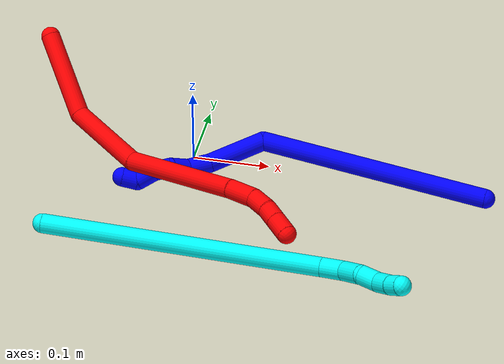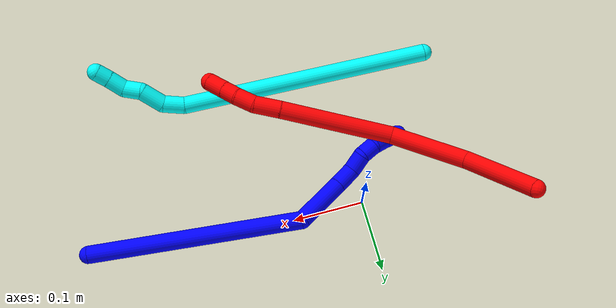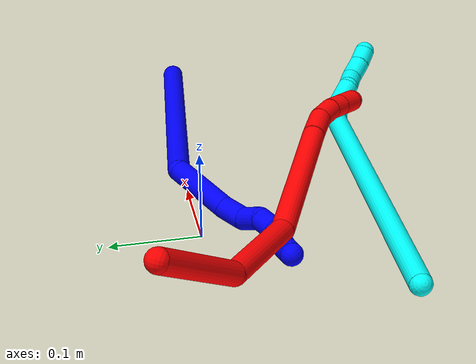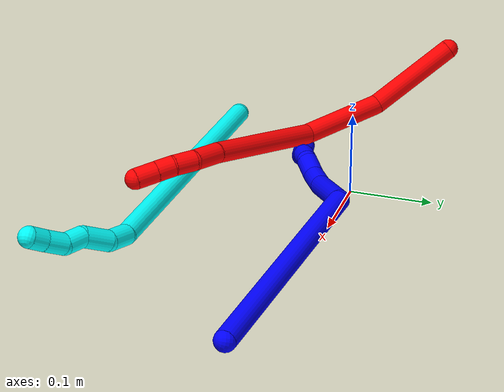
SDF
<sdf version="1.7">
 <world name="default">
  <plugin name="TubeGeneratorPlugin" filename="libtube_generator_plugin.so"/>
  <model name="photoneo_s_sensor">
   <static>1</static>
   <pose>0 0 2 1.57079 1.57079 3.14159</pose>
   <link name="link">
    <inertial><mass>0.1</mass></inertial>
    <sensor name="sensor" type="depth">
     <update_rate>30</update_rate>
     <camera>
      <horizontal_fov>1.22</horizontal_fov>
      <image><width>1920</width><height>1200</height><format>B8G8R8</format></image>
      <clip><near>0.1</near><far>4</far></clip>
      <depth_camera><output>points</output></depth_camera>
     </camera>
     <plugin name="camera_plugin" filename="libgazebo_ros_depth_camera.so">
      <baseline>0.2</baseline>
      <alwaysOn>1</alwaysOn>
      <updateRate>0.0</updateRate>
      <cameraName>camera_ir</cameraName>
      <imageTopicName>/camera/color/image_raw</imageTopicName>
      <cameraInfoTopicName>/camera/color/camera_info</cameraInfoTopicName>
      <depthImageTopicName>/camera/depth/image_raw</depthImageTopicName>
      <depthImageCameraInfoTopicName>/camera/depth/camera_info</depthImageCameraInfoTopicName>
      <pointCloudTopicName>/camera/depth/points</pointCloudTopicName>
      <frameName>fr_optical</frameName>
      <pointCloudCutoff>0.1</pointCloudCutoff>
      <pointCloudCutoffMax>2.0</pointCloudCutoffMax>
      <distortionK1>0</distortionK1>
      <distortionK2>0</distortionK2>
      <distortionK3>0</distortionK3>
      <distortionT1>0</distortionT1>
      <distortionT2>0</distortionT2>
      <CxPrime>0</CxPrime>
      <Cx>0</Cx>
      <Cy>0</Cy>
      <focalLength>0</focalLength>
      <hackBaseline>0</hackBaseline>
     </plugin>
    </sensor>
   </link>
  </model>
  <gravity>0 0 -9.8</gravity>
  <magnetic_field>6e-06 2.3e-05 -4.2e-05</magnetic_field>
  <atmosphere type="adiabatic"/>
  <physics name="default_physics" default="0" type="ode">
   <max_step_size>0.003</max_step_size>
   <real_time_factor>1</real_time_factor>
   <real_time_update_rate>1000</real_time_update_rate>
   <max_contacts>10000</max_contacts>
   <ode>
    <solver>
     <type>quick</type>
     <iters>100</iters>
     <sor>1.3</sor>
     <use_dynamic_moi_rescaling>0</use_dynamic_moi_rescaling>
    </solver>
    <constraints>
     <contact_max_correcting_vel>0</contact_max_correcting_vel>
     <contact_surface_layer>0.001</contact_surface_layer>
     <cfm>0</cfm>
     <erp>0.2</erp>
    </constraints>
   </ode>
  </physics>
  <scene><ambient>0.4 0.4 0.4 1</ambient><background>0.7 0.7 0.7 1</background><shadows>0</shadows></scene>
  <audio><device>default</device></audio>
  <spherical_coordinates>
   <surface_model>EARTH_WGS84</surface_model>
   <latitude_deg>0</latitude_deg>
   <longitude_deg>0</longitude_deg>
   <elevation>0</elevation>
   <heading_deg>0</heading_deg>
  </spherical_coordinates>
  <model name="bin">
   <static>1</static>
   <link name="bottom">
    <collision name="collision-bottom">
     <pose>0 0 -0.01 0 -0 0</pose>
     <geometry><box><size>0.8 0.6 0.02</size></box></geometry>
     <surface>
      <friction><ode><mu>100</mu><mu2>100</mu2></ode></friction>
      <contact><collide_bitmask>65535</collide_bitmask></contact>
     </surface>
    </collision>
   </link>
   <link name="west_wall">
    <collision name="collision-west_wall">
     <pose>-0.41 0 0.1 0 -0 0</pose>
     <geometry><box><size>0.02 0.6 0.2</size></box></geometry>
     <surface>
      <friction><ode><mu>100</mu><mu2>100</mu2></ode></friction>
      <contact><collide_bitmask>65535</collide_bitmask></contact>
     </surface>
    </collision>
   </link>
   <link name="east_wall">
    <collision name="collision-east_wall">
     <pose>0.41 0 0.1 0 -0 0</pose>
     <geometry><box><size>0.02 0.6 0.2</size></box></geometry>
     <surface>
      <friction><ode><mu>100</mu><mu2>100</mu2></ode></friction>
      <contact><collide_bitmask>65535</collide_bitmask></contact>
     </surface>
    </collision>
   </link>
   <link name="south_wall">
    <collision name="collision-south_wall">
     <pose>0 -0.31 0.1 0 -0 0</pose>
     <geometry><box><size>0.8 0.02 0.2</size></box></geometry>
     <surface>
      <friction><ode><mu>100</mu><mu2>100</mu2></ode></friction>
      <contact><collide_bitmask>65535</collide_bitmask></contact>
     </surface>
    </collision>
   </link>
   <link name="north_wall">
    <collision name="collision-north_wall">
     <pose>0 0.31 0.1 0 -0 0</pose>
     <geometry><box><size>0.8 0.02 0.2</size></box></geometry>
     <surface>
      <friction><ode><mu>100</mu><mu2>100</mu2></ode></friction>
      <contact><collide_bitmask>65535</collide_bitmask></contact>
     </surface>
    </collision>
   </link>
  </model>
  <model name="1">
   <static>0</static>
   <link name="1">
    <collision name="collision-cylinder-e_1_1_4">
     <pose>-0.115851 0.006002 -0.095261 -3.07867 -0.881648 3.00837</pose>
     <geometry><cylinder><radius>0.0125</radius><length>0.300214</length></cylinder></geometry>
     <surface>
      <friction><ode><mu>1.16</mu><mu2>1.16</mu2><slip1>0</slip1><slip2>0</slip2></ode></friction>
      <contact><ode><kp>1e+06</kp><kd>1</kd><max_vel>0</max_vel><min_depth>0.001</min_depth></ode></contact>
     </surface>
    </collision>
    <visual name="visual-cylinder-e_1_1_4">
     <pose>-0.115851 0.006002 -0.095261 -3.07867 -0.881648 3.00837</pose>
     <geometry><cylinder><radius>0.0125</radius><length>0.300214</length></cylinder></geometry>
     <material><ambient>0 0 1 1</ambient></material>
    </visual>
    <collision name="collision-cylinder-e_2_4_5">
     <pose>-0.26514 -0.005544 -0.195248 1.83387 -1.07297 -1.31987</pose>
     <geometry><cylinder><radius>0.0125</radius><length>0.076116</length></cylinder></geometry>
     <surface>
      <friction><ode><mu>1.16</mu><mu2>1.16</mu2><slip1>0</slip1><slip2>0</slip2></ode></friction>
      <contact><ode><kp>1e+06</kp><kd>1</kd><max_vel>0</max_vel><min_depth>0.001</min_depth></ode></contact>
     </surface>
    </collision>
    <visual name="visual-cylinder-e_2_4_5">
     <pose>-0.26514 -0.005544 -0.195248 1.83387 -1.07297 -1.31987</pose>
     <geometry><cylinder><radius>0.0125</radius><length>0.076116</length></cylinder></geometry>
     <material><ambient>0 0 1 1</ambient></material>
    </visual>
    <collision name="collision-cylinder-e_3_5_6">
     <pose>-0.313172 -0.027592 -0.201198 1.83631 -1.26148 -1.52514</pose>
     <geometry><cylinder><radius>0.0125</radius><length>0.030642</length></cylinder></geometry>
     <surface>
      <friction><ode><mu>1.16</mu><mu2>1.16</mu2><slip1>0</slip1><slip2>0</slip2></ode></friction>
      <contact><ode><kp>1e+06</kp><kd>1</kd><max_vel>0</max_vel><min_depth>0.001</min_depth></ode></contact>
     </surface>
    </collision>
    <visual name="visual-cylinder-e_3_5_6">
     <pose>-0.313172 -0.027592 -0.201198 1.83631 -1.26148 -1.52514</pose>
     <geometry><cylinder><radius>0.0125</radius><length>0.030642</length></cylinder></geometry>
     <material><ambient>0 0 1 1</ambient></material>
    </visual>
    <collision name="collision-cylinder-e_4_6_7">
     <pose>-0.340479 -0.031086 -0.200755 -0.54319 -1.4188 0.469326</pose>
     <geometry><cylinder><radius>0.0125</radius><length>0.025723</length></cylinder></geometry>
     <surface>
      <friction><ode><mu>1.16</mu><mu2>1.16</mu2><slip1>0</slip1><slip2>0</slip2></ode></friction>
      <contact><ode><kp>1e+06</kp><kd>1</kd><max_vel>0</max_vel><min_depth>0.001</min_depth></ode></contact>
     </surface>
    </collision>
    <visual name="visual-cylinder-e_4_6_7">
     <pose>-0.340479 -0.031086 -0.200755 -0.54319 -1.4188 0.469326</pose>
     <geometry><cylinder><radius>0.0125</radius><length>0.025723</length></cylinder></geometry>
     <material><ambient>0 0 1 1</ambient></material>
    </visual>
    <collision name="collision-cylinder-e_5_7_8">
     <pose>-0.363348 -0.033698 -0.201099 2.07805 -1.18373 -1.70382</pose>
     <geometry><cylinder><radius>0.0125</radius><length>0.021934</length></cylinder></geometry>
     <surface>
      <friction><ode><mu>1.16</mu><mu2>1.16</mu2><slip1>0</slip1><slip2>0</slip2></ode></friction>
      <contact><ode><kp>1e+06</kp><kd>1</kd><max_vel>0</max_vel><min_depth>0.001</min_depth></ode></contact>
     </surface>
    </collision>
    <visual name="visual-cylinder-e_5_7_8">
     <pose>-0.363348 -0.033698 -0.201099 2.07805 -1.18373 -1.70382</pose>
     <geometry><cylinder><radius>0.0125</radius><length>0.021934</length></cylinder></geometry>
     <material><ambient>0 0 1 1</ambient></material>
    </visual>
    <collision name="collision-cylinder-e_6_8_9">
     <pose>-0.382133 -0.045065 -0.207284 2.06495 -0.775551 -1.19983</pose>
     <geometry><cylinder><radius>0.0125</radius><length>0.024653</length></cylinder></geometry>
     <surface>
      <friction><ode><mu>1.16</mu><mu2>1.16</mu2><slip1>0</slip1><slip2>0</slip2></ode></friction>
      <contact><ode><kp>1e+06</kp><kd>1</kd><max_vel>0</max_vel><min_depth>0.001</min_depth></ode></contact>
     </surface>
    </collision>
    <visual name="visual-cylinder-e_6_8_9">
     <pose>-0.382133 -0.045065 -0.207284 2.06495 -0.775551 -1.19983</pose>
     <geometry><cylinder><radius>0.0125</radius><length>0.024653</length></cylinder></geometry>
     <material><ambient>0 0 1 1</ambient></material>
    </visual>
    <collision name="collision-cylinder-e_7_9_2">
     <pose>-0.400195 -0.051868 -0.215637 -2.91926 -1.14448 2.7984</pose>
     <geometry><cylinder><radius>0.0125</radius><length>0.02072</length></cylinder></geometry>
     <surface>
      <friction><ode><mu>1.16</mu><mu2>1.16</mu2><slip1>0</slip1><slip2>0</slip2></ode></friction>
      <contact><ode><kp>1e+06</kp><kd>1</kd><max_vel>0</max_vel><min_depth>0.001</min_depth></ode></contact>
     </surface>
    </collision>
    <visual name="visual-cylinder-e_7_9_2">
     <pose>-0.400195 -0.051868 -0.215637 -2.91926 -1.14448 2.7984</pose>
     <geometry><cylinder><radius>0.0125</radius><length>0.02072</length></cylinder></geometry>
     <material><ambient>0 0 1 1</ambient></material>
    </visual>
    <collision name="collision-sphere-2">
     <pose>-0.409628 -0.050924 -0.219816 0 -0 0</pose>
     <geometry><sphere><radius>0.0125</radius></sphere></geometry>
     <surface>
      <friction><ode><mu>1.16</mu><mu2>1.16</mu2><slip1>0</slip1><slip2>0</slip2></ode></friction>
      <contact><ode><kp>1e+06</kp><kd>1</kd><max_vel>0</max_vel><min_depth>0.001</min_depth></ode></contact>
     </surface>
    </collision>
    <visual name="visual-sphere-2">
     <pose>-0.409628 -0.050924 -0.219816 0 -0 0</pose>
     <geometry><sphere><radius>0.0125</radius></sphere></geometry>
     <material><ambient>0 0 1 1</ambient></material>
    </visual>
    <collision name="collision-sphere-9">
     <pose>-0.390763 -0.052813 -0.211459 0 -0 0</pose>
     <geometry><sphere><radius>0.0125</radius></sphere></geometry>
     <surface>
      <friction><ode><mu>1.16</mu><mu2>1.16</mu2><slip1>0</slip1><slip2>0</slip2></ode></friction>
      <contact><ode><kp>1e+06</kp><kd>1</kd><max_vel>0</max_vel><min_depth>0.001</min_depth></ode></contact>
     </surface>
    </collision>
    <visual name="visual-sphere-9">
     <pose>-0.390763 -0.052813 -0.211459 0 -0 0</pose>
     <geometry><sphere><radius>0.0125</radius></sphere></geometry>
     <material><ambient>0 0 1 1</ambient></material>
    </visual>
    <collision name="collision-sphere-4">
     <pose>-0.231702 0.012004 -0.190522 0 -0 0</pose>
     <geometry><sphere><radius>0.0125</radius></sphere></geometry>
     <surface>
      <friction><ode><mu>1.16</mu><mu2>1.16</mu2><slip1>0</slip1><slip2>0</slip2></ode></friction>
      <contact><ode><kp>1e+06</kp><kd>1</kd><max_vel>0</max_vel><min_depth>0.001</min_depth></ode></contact>
     </surface>
    </collision>
    <visual name="visual-sphere-4">
     <pose>-0.231702 0.012004 -0.190522 0 -0 0</pose>
     <geometry><sphere><radius>0.0125</radius></sphere></geometry>
     <material><ambient>0 0 1 1</ambient></material>
    </visual>
    <collision name="collision-sphere-1">
     <geometry><sphere><radius>0.0125</radius></sphere></geometry>
     <surface>
      <friction><ode><mu>1.16</mu><mu2>1.16</mu2><slip1>0</slip1><slip2>0</slip2></ode></friction>
      <contact><ode><kp>1e+06</kp><kd>1</kd><max_vel>0</max_vel><min_depth>0.001</min_depth></ode></contact>
     </surface>
    </collision>
    <visual name="visual-sphere-1">
     <geometry><sphere><radius>0.0125</radius></sphere></geometry>
     <material><ambient>0 0 1 1</ambient></material>
    </visual>
    <collision name="collision-sphere-8">
     <pose>-0.373503 -0.037316 -0.20311 0 -0 0</pose>
     <geometry><sphere><radius>0.0125</radius></sphere></geometry>
     <surface>
      <friction><ode><mu>1.16</mu><mu2>1.16</mu2><slip1>0</slip1><slip2>0</slip2></ode></friction>
      <contact><ode><kp>1e+06</kp><kd>1</kd><max_vel>0</max_vel><min_depth>0.001</min_depth></ode></contact>
     </surface>
    </collision>
    <visual name="visual-sphere-8">
     <pose>-0.373503 -0.037316 -0.20311 0 -0 0</pose>
     <geometry><sphere><radius>0.0125</radius></sphere></geometry>
     <material><ambient>0 0 1 1</ambient></material>
    </visual>
    <collision name="collision-sphere-5">
     <pose>-0.298578 -0.023092 -0.199974 0 -0 0</pose>
     <geometry><sphere><radius>0.0125</radius></sphere></geometry>
     <surface>
      <friction><ode><mu>1.16</mu><mu2>1.16</mu2><slip1>0</slip1><slip2>0</slip2></ode></friction>
      <contact><ode><kp>1e+06</kp><kd>1</kd><max_vel>0</max_vel><min_depth>0.001</min_depth></ode></contact>
     </surface>
    </collision>
    <visual name="visual-sphere-5">
     <pose>-0.298578 -0.023092 -0.199974 0 -0 0</pose>
     <geometry><sphere><radius>0.0125</radius></sphere></geometry>
     <material><ambient>0 0 1 1</ambient></material>
    </visual>
    <collision name="collision-sphere-6">
     <pose>-0.327766 -0.032092 -0.202422 0 -0 0</pose>
     <geometry><sphere><radius>0.0125</radius></sphere></geometry>
     <surface>
      <friction><ode><mu>1.16</mu><mu2>1.16</mu2><slip1>0</slip1><slip2>0</slip2></ode></friction>
      <contact><ode><kp>1e+06</kp><kd>1</kd><max_vel>0</max_vel><min_depth>0.001</min_depth></ode></contact>
     </surface>
    </collision>
    <visual name="visual-sphere-6">
     <pose>-0.327766 -0.032092 -0.202422 0 -0 0</pose>
     <geometry><sphere><radius>0.0125</radius></sphere></geometry>
     <material><ambient>0 0 1 1</ambient></material>
    </visual>
    <collision name="collision-sphere-7">
     <pose>-0.353192 -0.030079 -0.199088 0 -0 0</pose>
     <geometry><sphere><radius>0.0125</radius></sphere></geometry>
     <surface>
      <friction><ode><mu>1.16</mu><mu2>1.16</mu2><slip1>0</slip1><slip2>0</slip2></ode></friction>
      <contact><ode><kp>1e+06</kp><kd>1</kd><max_vel>0</max_vel><min_depth>0.001</min_depth></ode></contact>
     </surface>
    </collision>
    <visual name="visual-sphere-7">
     <pose>-0.353192 -0.030079 -0.199088 0 -0 0</pose>
     <geometry><sphere><radius>0.0125</radius></sphere></geometry>
     <material><ambient>0 0 1 1</ambient></material>
    </visual>
    <inertial>
     <pose>-0.197995 -0.00638 -0.137556 0 -0 0</pose>
     <mass>0.5</mass>
     <inertia>
      <ixx>-0.001285</ixx>
      <ixy>0</ixy>
      <ixz>0</ixz>
      <iyy>0.002463</iyy>
      <iyz>0</iyz>
      <izz>0.001708</izz>
     </inertia>
    </inertial>
   </link>
   <pose>0.388123 -0.025789 0.011498 1.27664 0.278776 0.549635</pose>
  </model>
  <model name="2">
   <static>0</static>
   <link name="2">
    <collision name="collision-cylinder-e_1_1_4">
     <pose>0.033575 -0.039622 0.025512 0.998742 0.619042 0.345417</pose>
     <geometry><cylinder><radius>0.0125</radius><length>0.115725</length></cylinder></geometry>
     <surface>
      <friction><ode><mu>1.16</mu><mu2>1.16</mu2><slip1>0</slip1><slip2>0</slip2></ode></friction>
      <contact><ode><kp>1e+06</kp><kd>1</kd><max_vel>0</max_vel><min_depth>0.001</min_depth></ode></contact>
     </surface>
    </collision>
    <visual name="visual-cylinder-e_1_1_4">
     <pose>0.033575 -0.039622 0.025512 0.998742 0.619042 0.345417</pose>
     <geometry><cylinder><radius>0.0125</radius><length>0.115725</length></cylinder></geometry>
     <material><ambient>1 0 0 1</ambient></material>
    </visual>
    <collision name="collision-cylinder-e_2_4_5">
     <pose>0.117547 -0.099734 0.061761 1.08809 1.14047 0.74015</pose>
     <geometry><cylinder><radius>0.0125</radius><length>0.110904</length></cylinder></geometry>
     <surface>
      <friction><ode><mu>1.16</mu><mu2>1.16</mu2><slip1>0</slip1><slip2>0</slip2></ode></friction>
      <contact><ode><kp>1e+06</kp><kd>1</kd><max_vel>0</max_vel><min_depth>0.001</min_depth></ode></contact>
     </surface>
    </collision>
    <visual name="visual-cylinder-e_2_4_5">
     <pose>0.117547 -0.099734 0.061761 1.08809 1.14047 0.74015</pose>
     <geometry><cylinder><radius>0.0125</radius><length>0.110904</length></cylinder></geometry>
     <material><ambient>1 0 0 1</ambient></material>
    </visual>
    <collision name="collision-cylinder-e_3_5_6">
     <pose>0.248046 -0.129435 0.06817 2.01011 1.44441 1.89255</pose>
     <geometry><cylinder><radius>0.0125</radius><length>0.161493</length></cylinder></geometry>
     <surface>
      <friction><ode><mu>1.16</mu><mu2>1.16</mu2><slip1>0</slip1><slip2>0</slip2></ode></friction>
      <contact><ode><kp>1e+06</kp><kd>1</kd><max_vel>0</max_vel><min_depth>0.001</min_depth></ode></contact>
     </surface>
    </collision>
    <visual name="visual-cylinder-e_3_5_6">
     <pose>0.248046 -0.129435 0.06817 2.01011 1.44441 1.89255</pose>
     <geometry><cylinder><radius>0.0125</radius><length>0.161493</length></cylinder></geometry>
     <material><ambient>1 0 0 1</ambient></material>
    </visual>
    <collision name="collision-cylinder-e_4_6_7">
     <pose>0.346236 -0.142515 0.063268 1.71781 1.35784 1.50381</pose>
     <geometry><cylinder><radius>0.0125</radius><length>0.037012</length></cylinder></geometry>
     <surface>
      <friction><ode><mu>1.16</mu><mu2>1.16</mu2><slip1>0</slip1><slip2>0</slip2></ode></friction>
      <contact><ode><kp>1e+06</kp><kd>1</kd><max_vel>0</max_vel><min_depth>0.001</min_depth></ode></contact>
     </surface>
    </collision>
    <visual name="visual-cylinder-e_4_6_7">
     <pose>0.346236 -0.142515 0.063268 1.71781 1.35784 1.50381</pose>
     <geometry><cylinder><radius>0.0125</radius><length>0.037012</length></cylinder></geometry>
     <material><ambient>1 0 0 1</ambient></material>
    </visual>
    <collision name="collision-cylinder-e_5_7_8">
     <pose>0.377152 -0.149783 0.066026 0.79554 1.21555 0.568708</pose>
     <geometry><cylinder><radius>0.0125</radius><length>0.027364</length></cylinder></geometry>
     <surface>
      <friction><ode><mu>1.16</mu><mu2>1.16</mu2><slip1>0</slip1><slip2>0</slip2></ode></friction>
      <contact><ode><kp>1e+06</kp><kd>1</kd><max_vel>0</max_vel><min_depth>0.001</min_depth></ode></contact>
     </surface>
    </collision>
    <visual name="visual-cylinder-e_5_7_8">
     <pose>0.377152 -0.149783 0.066026 0.79554 1.21555 0.568708</pose>
     <geometry><cylinder><radius>0.0125</radius><length>0.027364</length></cylinder></geometry>
     <material><ambient>1 0 0 1</ambient></material>
    </visual>
    <collision name="collision-cylinder-e_6_8_9">
     <pose>0.399133 -0.157083 0.073285 0.781839 1.02686 0.45667</pose>
     <geometry><cylinder><radius>0.0125</radius><length>0.021395</length></cylinder></geometry>
     <surface>
      <friction><ode><mu>1.16</mu><mu2>1.16</mu2><slip1>0</slip1><slip2>0</slip2></ode></friction>
      <contact><ode><kp>1e+06</kp><kd>1</kd><max_vel>0</max_vel><min_depth>0.001</min_depth></ode></contact>
     </surface>
    </collision>
    <visual name="visual-cylinder-e_6_8_9">
     <pose>0.399133 -0.157083 0.073285 0.781839 1.02686 0.45667</pose>
     <geometry><cylinder><radius>0.0125</radius><length>0.021395</length></cylinder></geometry>
     <material><ambient>1 0 0 1</ambient></material>
    </visual>
    <collision name="collision-cylinder-e_7_9_2">
     <pose>0.419435 -0.165811 0.08199 0.790668 1.02368 0.460546</pose>
     <geometry><cylinder><radius>0.0125</radius><length>0.026107</length></cylinder></geometry>
     <surface>
      <friction><ode><mu>1.16</mu><mu2>1.16</mu2><slip1>0</slip1><slip2>0</slip2></ode></friction>
      <contact><ode><kp>1e+06</kp><kd>1</kd><max_vel>0</max_vel><min_depth>0.001</min_depth></ode></contact>
     </surface>
    </collision>
    <visual name="visual-cylinder-e_7_9_2">
     <pose>0.419435 -0.165811 0.08199 0.790668 1.02368 0.460546</pose>
     <geometry><cylinder><radius>0.0125</radius><length>0.026107</length></cylinder></geometry>
     <material><ambient>1 0 0 1</ambient></material>
    </visual>
    <collision name="collision-sphere-2">
     <pose>0.430583 -0.170638 0.086767 0 -0 0</pose>
     <geometry><sphere><radius>0.0125</radius></sphere></geometry>
     <surface>
      <friction><ode><mu>1.16</mu><mu2>1.16</mu2><slip1>0</slip1><slip2>0</slip2></ode></friction>
      <contact><ode><kp>1e+06</kp><kd>1</kd><max_vel>0</max_vel><min_depth>0.001</min_depth></ode></contact>
     </surface>
    </collision>
    <visual name="visual-sphere-2">
     <pose>0.430583 -0.170638 0.086767 0 -0 0</pose>
     <geometry><sphere><radius>0.0125</radius></sphere></geometry>
     <material><ambient>1 0 0 1</ambient></material>
    </visual>
    <collision name="collision-sphere-9">
     <pose>0.408286 -0.160984 0.077214 0 -0 0</pose>
     <geometry><sphere><radius>0.0125</radius></sphere></geometry>
     <surface>
      <friction><ode><mu>1.16</mu><mu2>1.16</mu2><slip1>0</slip1><slip2>0</slip2></ode></friction>
      <contact><ode><kp>1e+06</kp><kd>1</kd><max_vel>0</max_vel><min_depth>0.001</min_depth></ode></contact>
     </surface>
    </collision>
    <visual name="visual-sphere-9">
     <pose>0.408286 -0.160984 0.077214 0 -0 0</pose>
     <geometry><sphere><radius>0.0125</radius></sphere></geometry>
     <material><ambient>1 0 0 1</ambient></material>
    </visual>
    <collision name="collision-sphere-4">
     <pose>0.06715 -0.079245 0.051023 0 -0 0</pose>
     <geometry><sphere><radius>0.0125</radius></sphere></geometry>
     <surface>
      <friction><ode><mu>1.16</mu><mu2>1.16</mu2><slip1>0</slip1><slip2>0</slip2></ode></friction>
      <contact><ode><kp>1e+06</kp><kd>1</kd><max_vel>0</max_vel><min_depth>0.001</min_depth></ode></contact>
     </surface>
    </collision>
    <visual name="visual-sphere-4">
     <pose>0.06715 -0.079245 0.051023 0 -0 0</pose>
     <geometry><sphere><radius>0.0125</radius></sphere></geometry>
     <material><ambient>1 0 0 1</ambient></material>
    </visual>
    <collision name="collision-sphere-1">
     <geometry><sphere><radius>0.0125</radius></sphere></geometry>
     <surface>
      <friction><ode><mu>1.16</mu><mu2>1.16</mu2><slip1>0</slip1><slip2>0</slip2></ode></friction>
      <contact><ode><kp>1e+06</kp><kd>1</kd><max_vel>0</max_vel><min_depth>0.001</min_depth></ode></contact>
     </surface>
    </collision>
    <visual name="visual-sphere-1">
     <geometry><sphere><radius>0.0125</radius></sphere></geometry>
     <material><ambient>1 0 0 1</ambient></material>
    </visual>
    <collision name="collision-sphere-8">
     <pose>0.389979 -0.153182 0.069357 0 -0 0</pose>
     <geometry><sphere><radius>0.0125</radius></sphere></geometry>
     <surface>
      <friction><ode><mu>1.16</mu><mu2>1.16</mu2><slip1>0</slip1><slip2>0</slip2></ode></friction>
      <contact><ode><kp>1e+06</kp><kd>1</kd><max_vel>0</max_vel><min_depth>0.001</min_depth></ode></contact>
     </surface>
    </collision>
    <visual name="visual-sphere-8">
     <pose>0.389979 -0.153182 0.069357 0 -0 0</pose>
     <geometry><sphere><radius>0.0125</radius></sphere></geometry>
     <material><ambient>1 0 0 1</ambient></material>
    </visual>
    <collision name="collision-sphere-5">
     <pose>0.167943 -0.120224 0.072499 0 -0 0</pose>
     <geometry><sphere><radius>0.0125</radius></sphere></geometry>
     <surface>
      <friction><ode><mu>1.16</mu><mu2>1.16</mu2><slip1>0</slip1><slip2>0</slip2></ode></friction>
      <contact><ode><kp>1e+06</kp><kd>1</kd><max_vel>0</max_vel><min_depth>0.001</min_depth></ode></contact>
     </surface>
    </collision>
    <visual name="visual-sphere-5">
     <pose>0.167943 -0.120224 0.072499 0 -0 0</pose>
     <geometry><sphere><radius>0.0125</radius></sphere></geometry>
     <material><ambient>1 0 0 1</ambient></material>
    </visual>
    <collision name="collision-sphere-6">
     <pose>0.328148 -0.138646 0.063841 0 -0 0</pose>
     <geometry><sphere><radius>0.0125</radius></sphere></geometry>
     <surface>
      <friction><ode><mu>1.16</mu><mu2>1.16</mu2><slip1>0</slip1><slip2>0</slip2></ode></friction>
      <contact><ode><kp>1e+06</kp><kd>1</kd><max_vel>0</max_vel><min_depth>0.001</min_depth></ode></contact>
     </surface>
    </collision>
    <visual name="visual-sphere-6">
     <pose>0.328148 -0.138646 0.063841 0 -0 0</pose>
     <geometry><sphere><radius>0.0125</radius></sphere></geometry>
     <material><ambient>1 0 0 1</ambient></material>
    </visual>
    <collision name="collision-sphere-7">
     <pose>0.364324 -0.146384 0.062695 0 -0 0</pose>
     <geometry><sphere><radius>0.0125</radius></sphere></geometry>
     <surface>
      <friction><ode><mu>1.16</mu><mu2>1.16</mu2><slip1>0</slip1><slip2>0</slip2></ode></friction>
      <contact><ode><kp>1e+06</kp><kd>1</kd><max_vel>0</max_vel><min_depth>0.001</min_depth></ode></contact>
     </surface>
    </collision>
    <visual name="visual-sphere-7">
     <pose>0.364324 -0.146384 0.062695 0 -0 0</pose>
     <geometry><sphere><radius>0.0125</radius></sphere></geometry>
     <material><ambient>1 0 0 1</ambient></material>
    </visual>
    <inertial>
     <pose>0.199209 -0.107224 0.057336 0 -0 0</pose>
     <mass>0.5</mass>
     <inertia>
      <ixx>0.000276</ixx>
      <ixy>0</ixy>
      <ixz>0</ixz>
      <iyy>0.000661</iyy>
      <iyz>0</iyz>
      <izz>-0.000365</izz>
     </inertia>
    </inertial>
   </link>
   <pose>-0.207785 0.070249 0.116545 1.71208 -0.279336 -0.513916</pose>
  </model>
  <model name="3">
   <static>0</static>
   <link name="3">
    <collision name="collision-cylinder-e_1_1_4">
     <pose>0.11233 -0.021237 0.140053 0.15049 0.670451 0.052514</pose>
     <geometry><cylinder><radius>0.0125</radius><length>0.361574</length></cylinder></geometry>
     <surface>
      <friction><ode><mu>1.16</mu><mu2>1.16</mu2><slip1>0</slip1><slip2>0</slip2></ode></friction>
      <contact><ode><kp>1e+06</kp><kd>1</kd><max_vel>0</max_vel><min_depth>0.001</min_depth></ode></contact>
     </surface>
    </collision>
    <visual name="visual-cylinder-e_1_1_4">
     <pose>0.11233 -0.021237 0.140053 0.15049 0.670451 0.052514</pose>
     <geometry><cylinder><radius>0.0125</radius><length>0.361574</length></cylinder></geometry>
     <material><ambient>0.003922 1 0.996078 1</ambient></material>
    </visual>
    <collision name="collision-cylinder-e_2_4_5">
     <pose>0.236902 -0.041354 0.289756 -0.115596 0.900028 -0.055889</pose>
     <geometry><cylinder><radius>0.0125</radius><length>0.031256</length></cylinder></geometry>
     <surface>
      <friction><ode><mu>1.16</mu><mu2>1.16</mu2><slip1>0</slip1><slip2>0</slip2></ode></friction>
      <contact><ode><kp>1e+06</kp><kd>1</kd><max_vel>0</max_vel><min_depth>0.001</min_depth></ode></contact>
     </surface>
    </collision>
    <visual name="visual-cylinder-e_2_4_5">
     <pose>0.236902 -0.041354 0.289756 -0.115596 0.900028 -0.055889</pose>
     <geometry><cylinder><radius>0.0125</radius><length>0.031256</length></cylinder></geometry>
     <material><ambient>0.003922 1 0.996078 1</ambient></material>
    </visual>
    <collision name="collision-cylinder-e_3_5_6">
     <pose>0.264938 -0.033666 0.303987 -0.961595 1.10151 -0.620047</pose>
     <geometry><cylinder><radius>0.0125</radius><length>0.035417</length></cylinder></geometry>
     <surface>
      <friction><ode><mu>1.16</mu><mu2>1.16</mu2><slip1>0</slip1><slip2>0</slip2></ode></friction>
      <contact><ode><kp>1e+06</kp><kd>1</kd><max_vel>0</max_vel><min_depth>0.001</min_depth></ode></contact>
     </surface>
    </collision>
    <visual name="visual-cylinder-e_3_5_6">
     <pose>0.264938 -0.033666 0.303987 -0.961595 1.10151 -0.620047</pose>
     <geometry><cylinder><radius>0.0125</radius><length>0.035417</length></cylinder></geometry>
     <material><ambient>0.003922 1 0.996078 1</ambient></material>
    </visual>
    <collision name="collision-cylinder-e_4_6_7">
     <pose>0.289487 -0.023809 0.317244 -0.362438 0.756434 -0.145354</pose>
     <geometry><cylinder><radius>0.0125</radius><length>0.02551</length></cylinder></geometry>
     <surface>
      <friction><ode><mu>1.16</mu><mu2>1.16</mu2><slip1>0</slip1><slip2>0</slip2></ode></friction>
      <contact><ode><kp>1e+06</kp><kd>1</kd><max_vel>0</max_vel><min_depth>0.001</min_depth></ode></contact>
     </surface>
    </collision>
    <visual name="visual-cylinder-e_4_6_7">
     <pose>0.289487 -0.023809 0.317244 -0.362438 0.756434 -0.145354</pose>
     <geometry><cylinder><radius>0.0125</radius><length>0.02551</length></cylinder></geometry>
     <material><ambient>0.003922 1 0.996078 1</ambient></material>
    </visual>
    <collision name="collision-cylinder-e_5_7_8">
     <pose>0.309876 -0.015596 0.329069 -1.00146 1.10525 -0.651</pose>
     <geometry><cylinder><radius>0.0125</radius><length>0.026042</length></cylinder></geometry>
     <surface>
      <friction><ode><mu>1.16</mu><mu2>1.16</mu2><slip1>0</slip1><slip2>0</slip2></ode></friction>
      <contact><ode><kp>1e+06</kp><kd>1</kd><max_vel>0</max_vel><min_depth>0.001</min_depth></ode></contact>
     </surface>
    </collision>
    <visual name="visual-cylinder-e_5_7_8">
     <pose>0.309876 -0.015596 0.329069 -1.00146 1.10525 -0.651</pose>
     <geometry><cylinder><radius>0.0125</radius><length>0.026042</length></cylinder></geometry>
     <material><ambient>0.003922 1 0.996078 1</ambient></material>
    </visual>
    <collision name="collision-cylinder-e_6_8_2">
     <pose>0.330915 -0.007794 0.334521 -0.89658 1.1972 -0.63397</pose>
     <geometry><cylinder><radius>0.0125</radius><length>0.020201</length></cylinder></geometry>
     <surface>
      <friction><ode><mu>1.16</mu><mu2>1.16</mu2><slip1>0</slip1><slip2>0</slip2></ode></friction>
      <contact><ode><kp>1e+06</kp><kd>1</kd><max_vel>0</max_vel><min_depth>0.001</min_depth></ode></contact>
     </surface>
    </collision>
    <visual name="visual-cylinder-e_6_8_2">
     <pose>0.330915 -0.007794 0.334521 -0.89658 1.1972 -0.63397</pose>
     <geometry><cylinder><radius>0.0125</radius><length>0.020201</length></cylinder></geometry>
     <material><ambient>0.003922 1 0.996078 1</ambient></material>
    </visual>
    <collision name="collision-sphere-2">
     <pose>0.340319 -0.004914 0.336823 0 -0 0</pose>
     <geometry><sphere><radius>0.0125</radius></sphere></geometry>
     <surface>
      <friction><ode><mu>1.16</mu><mu2>1.16</mu2><slip1>0</slip1><slip2>0</slip2></ode></friction>
      <contact><ode><kp>1e+06</kp><kd>1</kd><max_vel>0</max_vel><min_depth>0.001</min_depth></ode></contact>
     </surface>
    </collision>
    <visual name="visual-sphere-2">
     <pose>0.340319 -0.004914 0.336823 0 -0 0</pose>
     <geometry><sphere><radius>0.0125</radius></sphere></geometry>
     <material><ambient>0.003922 1 0.996078 1</ambient></material>
    </visual>
    <collision name="collision-sphere-4">
     <pose>0.22466 -0.042474 0.280106 0 -0 0</pose>
     <geometry><sphere><radius>0.0125</radius></sphere></geometry>
     <surface>
      <friction><ode><mu>1.16</mu><mu2>1.16</mu2><slip1>0</slip1><slip2>0</slip2></ode></friction>
      <contact><ode><kp>1e+06</kp><kd>1</kd><max_vel>0</max_vel><min_depth>0.001</min_depth></ode></contact>
     </surface>
    </collision>
    <visual name="visual-sphere-4">
     <pose>0.22466 -0.042474 0.280106 0 -0 0</pose>
     <geometry><sphere><radius>0.0125</radius></sphere></geometry>
     <material><ambient>0.003922 1 0.996078 1</ambient></material>
    </visual>
    <collision name="collision-sphere-1">
     <geometry><sphere><radius>0.0125</radius></sphere></geometry>
     <surface>
      <friction><ode><mu>1.16</mu><mu2>1.16</mu2><slip1>0</slip1><slip2>0</slip2></ode></friction>
      <contact><ode><kp>1e+06</kp><kd>1</kd><max_vel>0</max_vel><min_depth>0.001</min_depth></ode></contact>
     </surface>
    </collision>
    <visual name="visual-sphere-1">
     <geometry><sphere><radius>0.0125</radius></sphere></geometry>
     <material><ambient>0.003922 1 0.996078 1</ambient></material>
    </visual>
    <collision name="collision-sphere-8">
     <pose>0.321511 -0.010673 0.33222 0 -0 0</pose>
     <geometry><sphere><radius>0.0125</radius></sphere></geometry>
     <surface>
      <friction><ode><mu>1.16</mu><mu2>1.16</mu2><slip1>0</slip1><slip2>0</slip2></ode></friction>
      <contact><ode><kp>1e+06</kp><kd>1</kd><max_vel>0</max_vel><min_depth>0.001</min_depth></ode></contact>
     </surface>
    </collision>
    <visual name="visual-sphere-8">
     <pose>0.321511 -0.010673 0.33222 0 -0 0</pose>
     <geometry><sphere><radius>0.0125</radius></sphere></geometry>
     <material><ambient>0.003922 1 0.996078 1</ambient></material>
    </visual>
    <collision name="collision-sphere-5">
     <pose>0.249144 -0.040234 0.299405 0 -0 0</pose>
     <geometry><sphere><radius>0.0125</radius></sphere></geometry>
     <surface>
      <friction><ode><mu>1.16</mu><mu2>1.16</mu2><slip1>0</slip1><slip2>0</slip2></ode></friction>
      <contact><ode><kp>1e+06</kp><kd>1</kd><max_vel>0</max_vel><min_depth>0.001</min_depth></ode></contact>
     </surface>
    </collision>
    <visual name="visual-sphere-5">
     <pose>0.249144 -0.040234 0.299405 0 -0 0</pose>
     <geometry><sphere><radius>0.0125</radius></sphere></geometry>
     <material><ambient>0.003922 1 0.996078 1</ambient></material>
    </visual>
    <collision name="collision-sphere-6">
     <pose>0.280732 -0.027098 0.30857 0 -0 0</pose>
     <geometry><sphere><radius>0.0125</radius></sphere></geometry>
     <surface>
      <friction><ode><mu>1.16</mu><mu2>1.16</mu2><slip1>0</slip1><slip2>0</slip2></ode></friction>
      <contact><ode><kp>1e+06</kp><kd>1</kd><max_vel>0</max_vel><min_depth>0.001</min_depth></ode></contact>
     </surface>
    </collision>
    <visual name="visual-sphere-6">
     <pose>0.280732 -0.027098 0.30857 0 -0 0</pose>
     <geometry><sphere><radius>0.0125</radius></sphere></geometry>
     <material><ambient>0.003922 1 0.996078 1</ambient></material>
    </visual>
    <collision name="collision-sphere-7">
     <pose>0.298241 -0.02052 0.325918 0 -0 0</pose>
     <geometry><sphere><radius>0.0125</radius></sphere></geometry>
     <surface>
      <friction><ode><mu>1.16</mu><mu2>1.16</mu2><slip1>0</slip1><slip2>0</slip2></ode></friction>
      <contact><ode><kp>1e+06</kp><kd>1</kd><max_vel>0</max_vel><min_depth>0.001</min_depth></ode></contact>
     </surface>
    </collision>
    <visual name="visual-sphere-7">
     <pose>0.298241 -0.02052 0.325918 0 -0 0</pose>
     <geometry><sphere><radius>0.0125</radius></sphere></geometry>
     <material><ambient>0.003922 1 0.996078 1</ambient></material>
    </visual>
    <inertial>
     <pose>0.159086 -0.022669 0.187765 0 -0 0</pose>
     <mass>0.5</mass>
     <inertia>
      <ixx>0.003287</ixx>
      <ixy>0</ixy>
      <ixz>0</ixz>
      <iyy>0.004096</iyy>
      <iyz>0</iyz>
      <izz>-0.001983</izz>
     </inertia>
    </inertial>
   </link>
   <pose>-0.151528 -0.194143 0.014444 -2.79433 -0.83051 -0.418504</pose>
  </model>
 </world>
</sdf>
